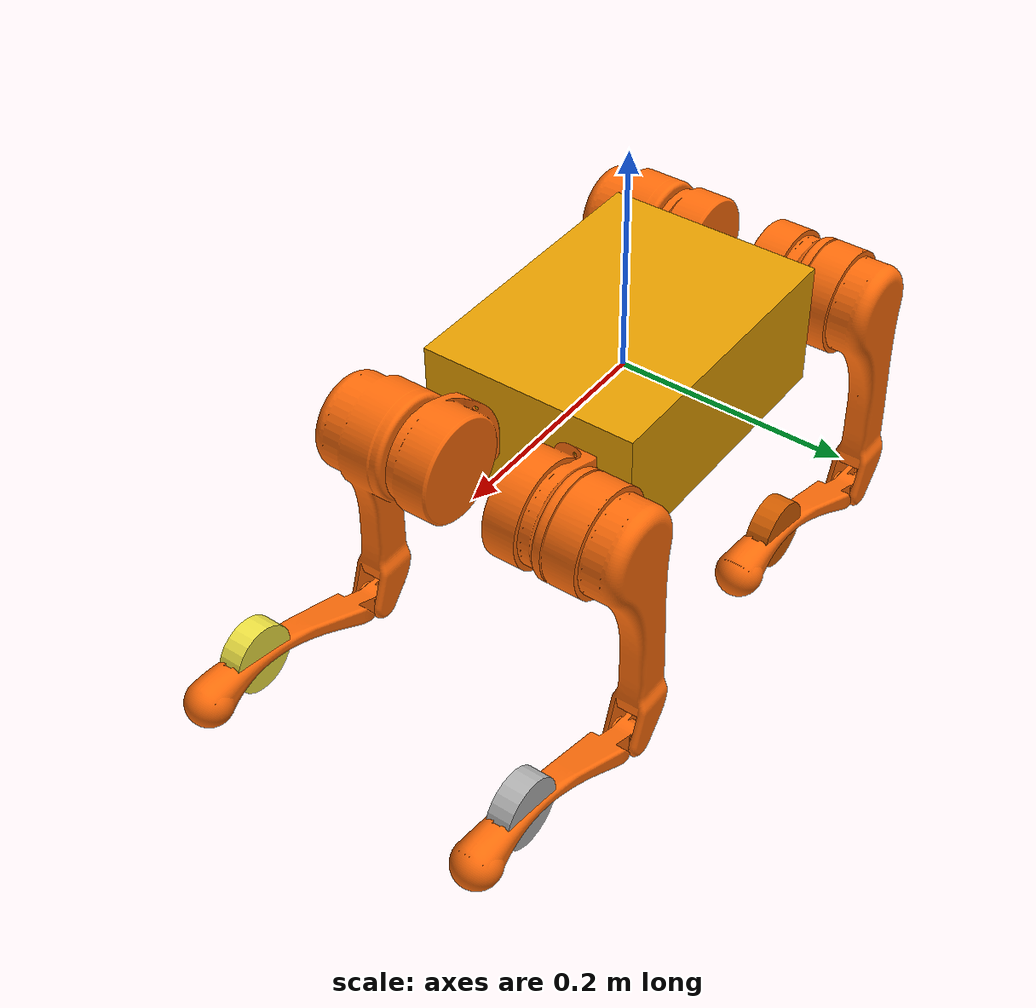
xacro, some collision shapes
<?xml version="1.0"?>

<robot xmlns:xacro="http://www.ros.org/wiki/xacro" name="robot">

    <xacro:arg name="robot_type" default="a1"/>

    <xacro:include filename="$(find legged_unitree_description)/urdf/common/materials.xacro"/>
    <xacro:include filename="$(find legged_unitree_description)/urdf/common/leg.xacro"/>
    <xacro:include filename="$(find legged_unitree_description)/urdf/common/gazebo.xacro"/>
    <xacro:include filename="$(find legged_unitree_description)/urdf/common/imu.xacro"/>

    <xacro:include filename="$(find legged_unitree_description)/urdf/$(arg robot_type)/const.xacro"/>

    <xacro:property name="mesh_path" value="file://$(find legged_unitree_description)/meshes/$(arg robot_type)"/>

    <link name="base">
        <visual>
            <origin rpy="0 0 0" xyz="0 0 0"/>
            <geometry>
                <mesh filename="${mesh_path}/trunk.dae" scale="1 1 1"/>
            </geometry>
        </visual>
        <collision>
            <origin rpy="0 0 0" xyz="0 0 0"/>
            <geometry>
                <box size="${trunk_length} ${trunk_width} ${trunk_height}"/>
            </geometry>
        </collision>
        <inertial>
            <origin rpy="0 0 0" xyz="${trunk_com_x} ${trunk_com_y} ${trunk_com_z}"/>
            <mass value="${trunk_mass}"/>
            <inertia
                    ixx="${trunk_ixx}" ixy="${trunk_ixy}" ixz="${trunk_ixz}"
                    iyy="${trunk_iyy}" iyz="${trunk_iyz}"
                    izz="${trunk_izz}"/>
        </inertial>
    </link>

    <xacro:IMU connected_to="base" imu_name="unitree_imu" xyz="0. 0. 0." rpy="0. 0. 0."/>

    <xacro:leg prefix="LF" mesh_path="${mesh_path}" mirror="1" mirror_dae="True" front_hind="1" front_hind_dae="True">
        <origin rpy="0 0 0" xyz="${leg_offset_x} ${leg_offset_y} 0"/>
    </xacro:leg>

    <xacro:leg prefix="LH" mesh_path="${mesh_path}" mirror="1" mirror_dae="True" front_hind="-1" front_hind_dae="False">
        <origin rpy="0 0 0" xyz="${-leg_offset_x} ${leg_offset_y} 0"/>
    </xacro:leg>

    <xacro:leg prefix="RF" mesh_path="${mesh_path}" mirror="-1" mirror_dae="False" front_hind="1" front_hind_dae="True">
        <origin rpy="0 0 0" xyz="${leg_offset_x} ${-leg_offset_y} 0"/>
    </xacro:leg>

    <xacro:leg prefix="RH" mesh_path="${mesh_path}" mirror="-1" mirror_dae="False" front_hind="-1" front_hind_dae="False">
        <origin rpy="0 0 0" xyz="${-leg_offset_x} ${-leg_offset_y} 0"/>
    </xacro:leg>

    <!-- include upper_package xacro file -->

</robot>

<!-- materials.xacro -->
<robot>

    <material name="black">
        <color rgba="0.0 0.0 0.0 1.0"/>
    </material>

    <material name="blue">
        <color rgba="0.0 0.0 0.8 1.0"/>
    </material>

    <material name="green">
        <color rgba="0.0 0.8 0.0 1.0"/>
    </material>

    <material name="wheelTexture">
        <script>
            <uri>wheelTexture.material</uri>
        </script>
    </material>

    <material name="grey">
        <color rgba="0.2 0.2 0.2 1.0"/>
    </material>

    <material name="silver">
        <color rgba="${233/255} ${233/255} ${216/255} 1.0"/>
    </material>

    <material name="orange">
        <color rgba="${255/255} ${108/255} ${10/255} 1.0"/>
    </material>

    <material name="brown">
        <color rgba="${222/255} ${207/255} ${195/255} 1.0"/>
    </material>

    <material name="red">
        <color rgba="0.8 0.0 0.0 1.0"/>
    </material>

    <material name="white">
        <color rgba="1.0 1.0 1.0 1.0"/>
    </material>

</robot>

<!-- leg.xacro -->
<robot xmlns:xacro="http://www.ros.org/wiki/xacro">

    <xacro:include filename="$(find legged_unitree_description)/urdf/common/transmission.xacro"/>

    <xacro:macro name="leg" params="prefix mesh_path mirror mirror_dae front_hind front_hind_dae *origin">

        <joint name="${prefix}_HAA" type="revolute">
            <xacro:insert_block name="origin"/>
            <parent link="base"/>
            <child link="${prefix}_hip"/>
            <axis xyz="1 0 0"/>
            <dynamics damping="${damping}" friction="${friction}"/>
            <xacro:if value="${(mirror_dae == True)}">
                <limit effort="${hip_torque_max}" velocity="${hip_velocity_max}" lower="${hip_position_min}"
                       upper="${hip_position_max}"/>
            </xacro:if>
            <xacro:if value="${(mirror_dae == False)}">
                <limit effort="${hip_torque_max}" velocity="${hip_velocity_max}" lower="${-hip_position_max}"
                       upper="${-hip_position_min}"/>
            </xacro:if>
        </joint>

        <link name="${prefix}_hip">
            <visual>
                <xacro:if value="${(mirror_dae == True) and (front_hind_dae == True)}">
                    <origin rpy="0 0 0" xyz="0 0 0"/>
                </xacro:if>
                <xacro:if value="${(mirror_dae == False) and (front_hind_dae == True)}">
                    <origin rpy="${pi} 0 0" xyz="0 0 0"/>
                </xacro:if>
                <xacro:if value="${(mirror_dae == True) and (front_hind_dae == False)}">
                    <origin rpy="0 ${pi} 0" xyz="0 0 0"/>
                </xacro:if>
                <xacro:if value="${(mirror_dae == False) and (front_hind_dae == False)}">
                    <origin rpy="${pi} ${pi} 0" xyz="0 0 0"/>
                </xacro:if>
                <geometry>
                    <mesh filename="${mesh_path}/hip.dae"
                          scale="1 1 1"/>
                </geometry>
                <material name="orange"/>
            </visual>
            <collision>
                <origin rpy="${pi/2.0} 0 0" xyz="0 0 0"/>
                <geometry>
                    <cylinder length="${hip_length}" radius="${hip_radius}"/>
                </geometry>
            </collision>
            <inertial>
                <origin rpy="0 0 0" xyz="${hip_com_x*front_hind} ${hip_com_y*mirror} ${hip_com_z}"/>
                <mass value="${hip_mass}"/>
                <inertia
                        ixx="${hip_ixx}" ixy="${hip_ixy*mirror*front_hind}" ixz="${hip_ixz*front_hind}"
                        iyy="${hip_iyy}" iyz="${hip_iyz*mirror}"
                        izz="${hip_izz}"/>
            </inertial>
        </link>

        <joint name="${prefix}_HFE" type="revolute">
            <origin rpy="0 0 0" xyz="0 ${thigh_offset*mirror} 0"/>
            <parent link="${prefix}_hip"/>
            <child link="${prefix}_thigh"/>
            <axis xyz="0 1 0"/>
            <dynamics damping="${damping}" friction="${friction}"/>
            <limit effort="${thigh_torque_max}" velocity="${thigh_velocity_max}" lower="${thigh_position_min}"
                   upper="${thigh_position_max}"/>
        </joint>

        <link name="${prefix}_thigh">
            <visual>
                <origin rpy="0 0 0" xyz="0 0 0"/>
                <geometry>
                    <xacro:if value="${mirror_dae == True}">
                        <mesh filename="${mesh_path}/thigh.dae"
                              scale="1 1 1"/>
                    </xacro:if>
                    <xacro:if value="${mirror_dae == False}">
                        <mesh filename="${mesh_path}/thigh_mirror.dae"
                              scale="1 1 1"/>
                    </xacro:if>
                </geometry>
                <material name="orange"/>
            </visual>
            <collision>
                <origin rpy="0 ${pi/2.0+0.1} 0" xyz="${thigh_x_offset} 0 ${-thigh_length/2.0}"/>
                <geometry>
                    <box size="${thigh_length} ${thigh_width} ${thigh_height}"/>
                </geometry>
            </collision>
            <collision>
                <origin rpy="${pi/2.0} 0 0" xyz="0 ${mirror*thigh_shoulder_y_offset} 0"/>
                <geometry>
                    <cylinder length="${thigh_shoulder_length}" radius="${thigh_shoulder_radius}"/>
                </geometry>
            </collision>
            <inertial>
                <origin rpy="0 0 0" xyz="${thigh_com_x} ${thigh_com_y*mirror} ${thigh_com_z}"/>
                <mass value="${thigh_mass}"/>
                <inertia
                        ixx="${thigh_ixx}" ixy="${thigh_ixy*mirror}" ixz="${thigh_ixz}"
                        iyy="${thigh_iyy}" iyz="${thigh_iyz*mirror}"
                        izz="${thigh_izz}"/>
            </inertial>
        </link>

        <joint name="${prefix}_KFE" type="revolute">
            <origin rpy="0 0 0" xyz="0 0 ${-thigh_length}"/>
            <parent link="${prefix}_thigh"/>
            <child link="${prefix}_calf"/>
            <axis xyz="0 1 0"/>
            <dynamics damping="${damping}" friction="${friction}"/>
            <limit effort="${calf_torque_max}" velocity="${calf_velocity_max}" lower="${calf_position_min}" upper="${calf_position_max}"/>
        </joint>

        <link name="${prefix}_calf">
            <visual>
                <origin rpy="0 0 0" xyz="0 0 0"/>
                <geometry>
                    <mesh filename="${mesh_path}/calf.dae"
                          scale="1 1 1"/>
                </geometry>
                <material name="orange"/>
            </visual>
            <collision>
                <origin rpy="0 ${pi/2.0} 0" xyz="${calf_x_offset} 0 ${-calf_length/2.0}"/>
                <geometry>
                    <box size="${calf_length} ${calf_width} ${calf_height}"/>
                </geometry>
            </collision>
            <inertial>
                <origin rpy="0 0 0" xyz="${calf_com_x} ${calf_com_y} ${calf_com_z}"/>
                <mass value="${calf_mass}"/>
                <inertia
                        ixx="${calf_ixx}" ixy="${calf_ixy}" ixz="${calf_ixz}"
                        iyy="${calf_iyy}" iyz="${calf_iyz}"
                        izz="${calf_izz}"/>
            </inertial>
        </link>

        <joint name="${prefix}_foot_fixed" type="fixed" dont_collapse="true">
            <origin rpy="0 0 0" xyz="0 0 ${-(calf_length)}"/>
            <parent link="${prefix}_calf"/>
            <child link="${prefix}_FOOT"/>
        </joint>

        <link name="${prefix}_FOOT">
            <visual>
                <origin rpy="0 0 0" xyz="0 0 0"/>
                <geometry>
                    <sphere radius="${foot_radius-0.01}"/>
                </geometry>
                <material name="orange"/>
            </visual>
            <collision>
                <origin rpy="0 0 0" xyz="0 0 0"/>
                <geometry>
                    <sphere radius="${foot_radius}"/>
                </geometry>
            </collision>
            <inertial>
                <mass value="${foot_mass}"/>
                <inertia
                        ixx="${(2*foot_mass)/5.0*(foot_radius*foot_radius)}" ixy="0.0" ixz="0.0"
                        iyy="${(2*foot_mass)/5.0*(foot_radius*foot_radius)}" iyz="0.0"
                        izz="${(2*foot_mass)/5.0*(foot_radius*foot_radius)}"/>
            </inertial>
        </link>

        <joint name="${prefix}_switcher" type="prismatic">
            <origin rpy="0 0.5 0" xyz="0.02 0 0.05"/>
            <parent link="${prefix}_FOOT"/>
            <child link="${prefix}_dummy"/>
            <axis xyz="0 0 1"/>
            <dynamics damping="10.0" friction="0.5"/>
            <limit effort="1e100" velocity="10" lower="-0.045" upper="0.05"/>
        </joint>

        <link name="${prefix}_dummy">
            <inertial>
                <origin rpy="0 0 0" xyz="0 0 0"/>
                <mass value="0.001"/>
                <inertia
                        ixx="0.000001696" ixy="0" ixz="0"
                        iyy="0.000001696" iyz="0"
                        izz="0.000003226"/>
            </inertial>
        </link>

        <joint name="${prefix}_roller" type="continuous">
            <origin rpy="${pi/2.0} 0 0" xyz="0 0 0"/>
            <parent link="${prefix}_dummy"/>
            <child link="${prefix}_wheel"/>
            <axis xyz="0 0 1"/>
            <dynamics damping="0.00" friction="0.00"/>
            <limit effort="0" velocity="10"/>
        </joint>

        <link name="${prefix}_wheel">

            <visual>
                <geometry>
                    <mesh filename="${mesh_path}/wheel.dae" />
                </geometry>
                <material name=""/>
            </visual>

            <collision>
                <origin rpy="0 0 0" xyz="0 0 0"/>
                <geometry>
                    <cylinder length="0.02" radius="0.03"/>
                </geometry>
            </collision>

            <inertial>
                <origin rpy="0 0 0" xyz="0 0 0"/>
                <mass value="0.025"/>
                <inertia
                        ixx="0.00001696" ixy="0" ixz="0"
                        iyy="0.00001696" iyz="0"
                        izz="0.00003226"/>
            </inertial>
        </link>

        <gazebo reference="${prefix}_foot_fixed">
            <disableFixedJointLumping>true</disableFixedJointLumping>
        </gazebo>

        <gazebo reference="${prefix}_hip">
            <mu1>0.2</mu1>
            <mu2>0.2</mu2>
            <material>Gazebo/DarkGrey</material>
        </gazebo>
        <gazebo reference="${prefix}_thigh">
            <mu1>0.2</mu1>
            <mu2>0.2</mu2>
            <self_collide>0</self_collide>
            <material>Gazebo/DarkGrey</material>
            <kp value="1000000.0"/>
            <kd value="100.0"/>
        </gazebo>
        <gazebo reference="${prefix}_calf">
            <mu1>0.6</mu1>
            <mu2>0.6</mu2>
            <self_collide>1</self_collide>
        </gazebo>
        <gazebo reference="${prefix}_FOOT">
            <mu1>0.6</mu1>
            <mu2>0.6</mu2>
            <self_collide>0</self_collide>
            <material>Gazebo/DarkGrey</material>
            <kp value="1000000.0"/>
            <kd value="100.0"/>
        </gazebo>

        <gazebo reference="${prefix}_roller">
            <passive>true</passive>
        </gazebo>

        <gazebo reference="${prefix}_wheel">

            <self_collide>false</self_collide>
            <fdir1>1 0 0</fdir1>  <!-- forces friction to against rolling direction-->
            <!-- Friction: low in rolling dir (mu1), higher sideways (mu2) -->
            <mu1>0.02</mu1>
            <mu2>5.0</mu2>
            <slip1>0.01</slip1>
            <slip2>0.00</slip2>

            <min_depth>0.01</min_depth>

            <kp>100000.0</kp>
            <kd>450.0</kd>
        </gazebo>

        <gazebo reference="${prefix}_switcher">
            <provide_feedback>true</provide_feedback>
            <kp>50000.0</kp>
            <kd>10000.0</kd>
            <fudge_factor>0.0001</fudge_factor>
            <cfm>1e-9</cfm>
            <erp>0.8</erp>

            <bounce>0.0</bounce>
        </gazebo>

        <xacro:leg_transmission name="${prefix}"/>
    </xacro:macro>
</robot>

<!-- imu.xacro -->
<robot xmlns:xacro="http://www.ros.org/wiki/xacro" name="imu">
    <xacro:macro name="IMU" params="connected_to imu_name xyz:='0 0 0' rpy:='0 0 0' ">
        <!-- Imu is fixed to the base link -->
        <joint name="${imu_name}_joint" type="fixed">
            <origin xyz="${xyz}" rpy="${rpy}"/>
            <parent link="${connected_to}"/>
            <child link="${imu_name}"/>
        </joint>
        <!-- Imu link -->
        <link name="${imu_name}">
            <inertial>
                <mass value="0.01"/>
                <origin rpy="0 0 0" xyz="0 0 0"/>
                <inertia ixx="0.000001" ixy="0" ixz="0" iyy="0.000001" iyz="0" izz="0.000001"/>
            </inertial>
            <visual>
                <origin rpy="0 0 0" xyz="0 0 0"/>
                <geometry>
                    <box size="0.015 0.015 0.004"/>
                </geometry>
            </visual>
            <material name="orange">
                <color rgba="255 108 10 255"/>
            </material>
        </link>
        <gazebo reference="${imu_name}">
            <material>Gazebo/Orange</material>
        </gazebo>
        <gazebo reference="${imu_name}_joint">
            <disableFixedJointLumping>true</disableFixedJointLumping>
        </gazebo>
    </xacro:macro>
</robot>

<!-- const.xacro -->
<robot xmlns:xacro="http://www.ros.org/wiki/xacro" name="a1_description">

    <!-- Constants for robot dimensions -->
    <xacro:property name="stick_mass" value="0.00001"/>

    <!-- simplified collision value -->
    <xacro:property name="trunk_width" value="0.194"/>
    <xacro:property name="trunk_length" value="0.267"/>
    <xacro:property name="trunk_height" value="0.114"/>
    <xacro:property name="hip_radius" value="0.046"/>
    <xacro:property name="hip_length" value="0.04"/>
    <xacro:property name="thigh_shoulder_radius" value="0.041"/>
    <xacro:property name="thigh_shoulder_length" value="0.04"/>
    <xacro:property name="thigh_shoulder_y_offset" value="-0.008"/>

    <xacro:property name="thigh_width" value="0.03"/>
    <xacro:property name="thigh_height" value="0.034"/>
    <xacro:property name="thigh_x_offset" value="-0.015"/>
    <xacro:property name="calf_width" value="0.016"/>
    <xacro:property name="calf_height" value="0.016"/>
    <xacro:property name="calf_x_offset" value="0.0"/>
    <xacro:property name="foot_radius" value="0.02"/>

    <!-- kinematic value -->
    <xacro:property name="thigh_offset" value="0.0838"/>
    <xacro:property name="thigh_length" value="0.2"/>
    <xacro:property name="calf_length" value="0.2"/>

    <!-- leg offset from trunk center value -->
    <xacro:property name="leg_offset_x" value="0.1805"/>
    <xacro:property name="leg_offset_y" value="0.047"/>
    <xacro:property name="trunk_offset_z" value="0.01675"/>
    <xacro:property name="hip_offset" value="0.065"/>

    <!-- joint limits -->
    <xacro:property name="damping" value="0"/>
    <xacro:property name="friction" value="0"/>
    <xacro:property name="hip_position_max" value="${46*pi/180.0}"/>
    <xacro:property name="hip_position_min" value="${-46*pi/180.0}"/>
    <xacro:property name="hip_velocity_max" value="21"/>
    <xacro:property name="hip_torque_max" value="33.5"/>
    <xacro:property name="thigh_position_max" value="${240*pi/180.0}"/>
    <xacro:property name="thigh_position_min" value="${-60*pi/180.0}"/>
    <xacro:property name="thigh_velocity_max" value="21"/>
    <xacro:property name="thigh_torque_max" value="33.5"/>
    <xacro:property name="calf_position_max" value="${-52.5*pi/180.0}"/>
    <xacro:property name="calf_position_min" value="${-154.5*pi/180.0}"/>
    <xacro:property name="calf_velocity_max" value="21"/>
    <xacro:property name="calf_torque_max" value="33.5"/>

    <!-- dynamics inertial value -->
    <!-- trunk -->
    <xacro:property name="trunk_mass" value="6.0"/>
    <xacro:property name="trunk_com_x" value="0.0000"/>
    <xacro:property name="trunk_com_y" value="0.0041"/>
    <xacro:property name="trunk_com_z" value="-0.0005"/>
    <xacro:property name="trunk_ixx" value="0.0158533"/>
    <xacro:property name="trunk_ixy" value="-0.0000366"/>
    <xacro:property name="trunk_ixz" value="-0.0000611"/>
    <xacro:property name="trunk_iyy" value="0.0377999"/>
    <xacro:property name="trunk_iyz" value="-0.0000275"/>
    <xacro:property name="trunk_izz" value="0.0456542"/>

    <!-- hip (left front) -->
    <xacro:property name="hip_mass" value="0.595"/>
    <xacro:property name="hip_com_x" value="-0.003875"/>
    <xacro:property name="hip_com_y" value="0.001622"/>
    <xacro:property name="hip_com_z" value="0.000042"/>
    <xacro:property name="hip_ixx" value="0.000402747"/>
    <xacro:property name="hip_ixy" value="-0.000008709"/>
    <xacro:property name="hip_ixz" value="-0.000000297"/>
    <xacro:property name="hip_iyy" value="0.000691123"/>
    <xacro:property name="hip_iyz" value="-0.000000545"/>
    <xacro:property name="hip_izz" value="0.000487919"/>

    <!-- thigh -->
    <xacro:property name="thigh_mass" value="0.888"/>
    <xacro:property name="thigh_com_x" value="-0.003574"/>
    <xacro:property name="thigh_com_y" value="-0.019529"/>
    <xacro:property name="thigh_com_z" value="-0.030323"/>
    <xacro:property name="thigh_ixx" value="0.005251806"/>
    <xacro:property name="thigh_ixy" value="-0.000002168"/>
    <xacro:property name="thigh_ixz" value="0.000346889"/>
    <xacro:property name="thigh_iyy" value="0.005000475"/>
    <xacro:property name="thigh_iyz" value="-0.000028174"/>
    <xacro:property name="thigh_izz" value="0.001110200"/>

    <!-- calf -->
    <xacro:property name="calf_mass" value="0.151"/>
    <xacro:property name="calf_com_x" value="0.007105"/>
    <xacro:property name="calf_com_y" value="-0.000239"/>
    <xacro:property name="calf_com_z" value="-0.096933"/>
    <xacro:property name="calf_ixx" value="0.002344758"/>
    <xacro:property name="calf_ixy" value="0.0"/>
    <xacro:property name="calf_ixz" value="-0.000141275"/>
    <xacro:property name="calf_iyy" value="0.002360755"/>
    <xacro:property name="calf_iyz" value="0.0"/>
    <xacro:property name="calf_izz" value="0.000031158"/>

    <!-- foot -->
    <xacro:property name="foot_mass" value="0.06"/>

</robot>
